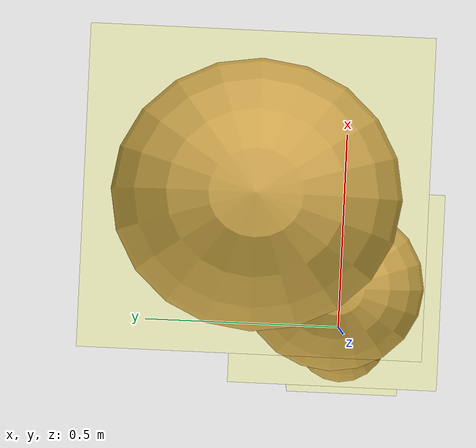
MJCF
<mujoco model="orn-gigasvermis-sphere">
    <compiler angle="degree" />
    <default>
        <motor ctrlrange="-1.0 1.0" ctrllimited="true" gear="15.6332" />
        <geom friction="1 0.5 0.5" solref=".02 1" solimp="0 .8 .01" material="self" density="50" />
        <joint limited="true" armature="0.000172747" damping="0.000410838" stiffness="0.000977078" solreflimit=".04 1"
            solimplimit="0 .8 .03" />
    </default>
    <asset>
        <material name="self" rgba=".8 .6 .4 1" />
    </asset>

    <worldbody>
        <body name="seg0" pos="0 0 0.2613209">

      <camera name="floating" pos="-2.11 0 1.05" xyaxes="0 -1 0 .5 0 1" mode="trackcom" fovy="70" />
      <camera name="egocentric" pos="0.46 0 .11" xyaxes="0 -1 0 0 0 1" fovy="90" />
          <geom name="seg0_geom" type="ellipsoid" pos="0 0 0" size="0.1280482 0.1204073 0.2613209" euler="0 0 0" />
          <site name="seg0_site" type="box" pos="0 0 0" size="0.140853 0.132448 0.287453" zaxis="0 0 1" rgba="1 1 0 0.15" />

          <body name="seg1" pos="0.1221998 0.03830071 0.5449345">
            <joint name="seg0_to_1" range="0 75" type="ball" pos="-0.08436245 -0.02811942 -0.1768 "/>
            <geom name="seg1_geom" type="ellipsoid" pos="0 0 0" size="0.1981978 0.2115602 0.2836136" euler="0.004153203 -0.000728891 -0.001950957" />
            <site name="seg1_site" type="box" pos="0 0 0" size="0.2180175 0.2327162 0.3119749" zaxis="0 0 1" rgba="1 1 0 0.15" />

            <body name="seg2" pos="0.1982088 0.1855726 0.530645">
              <joint name="seg1_to_2" range="0 75" type="ball" pos="-0.0884 -0.07752818 -0.1223635 "/>
              <geom name="seg2_geom" type="ellipsoid" pos="0 0 0" size="0.2946969 0.3145653 0.4217002" euler="0.005932046 -0.002004978 -0.0047394" />
              <site name="seg2_site" type="box" pos="0 0 0" size="0.3241666 0.3460218 0.4638702" zaxis="0 0 1" rgba="1 1 0 0.15" />
            </body>
          </body>
        </body>
    </worldbody>

    <actuator>
    <motor name="motor0_to_1" joint="seg0_to_1" gear="0 6.63688 0" />
    <motor name="motor1_to_2" joint="seg1_to_2" gear="0 10.0519 0" />
    </actuator>

    <sensor>
    <touch name="seg0_touch" site="seg0_site" />
    <touch name="seg1_touch" site="seg1_site" />
    <touch name="seg2_touch" site="seg2_site" />
        <velocimeter name="torso_vel" site="seg0_site" />
        <gyro name="torso_gyro" site="seg0_site" />
        <accelerometer name="torso_accel" site="seg0_site" />
    </sensor>

    <contact>
    <exclude body1="seg0" body2="seg1" />
    <exclude body1="seg0" body2="seg2" />
    <exclude body1="seg1" body2="seg2" />
    </contact>
</mujoco>
